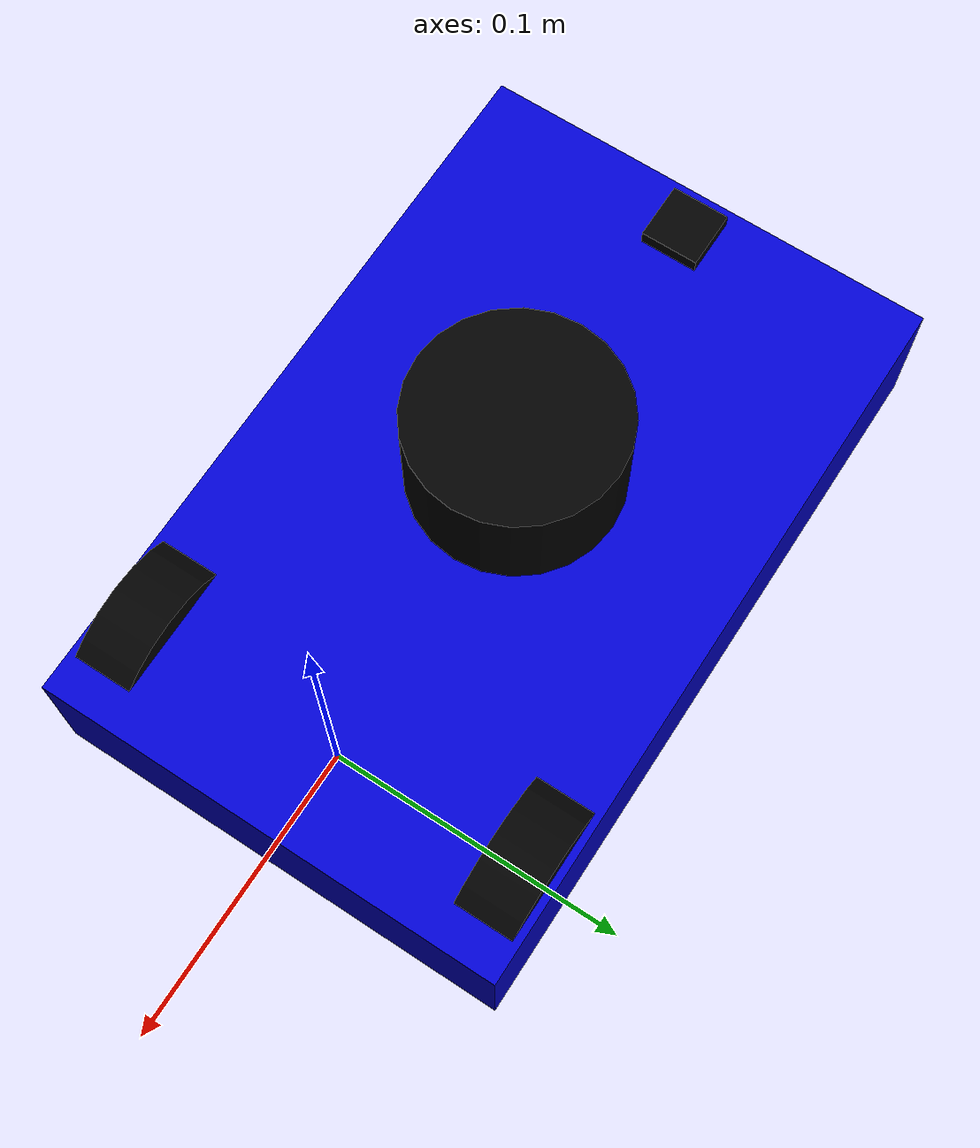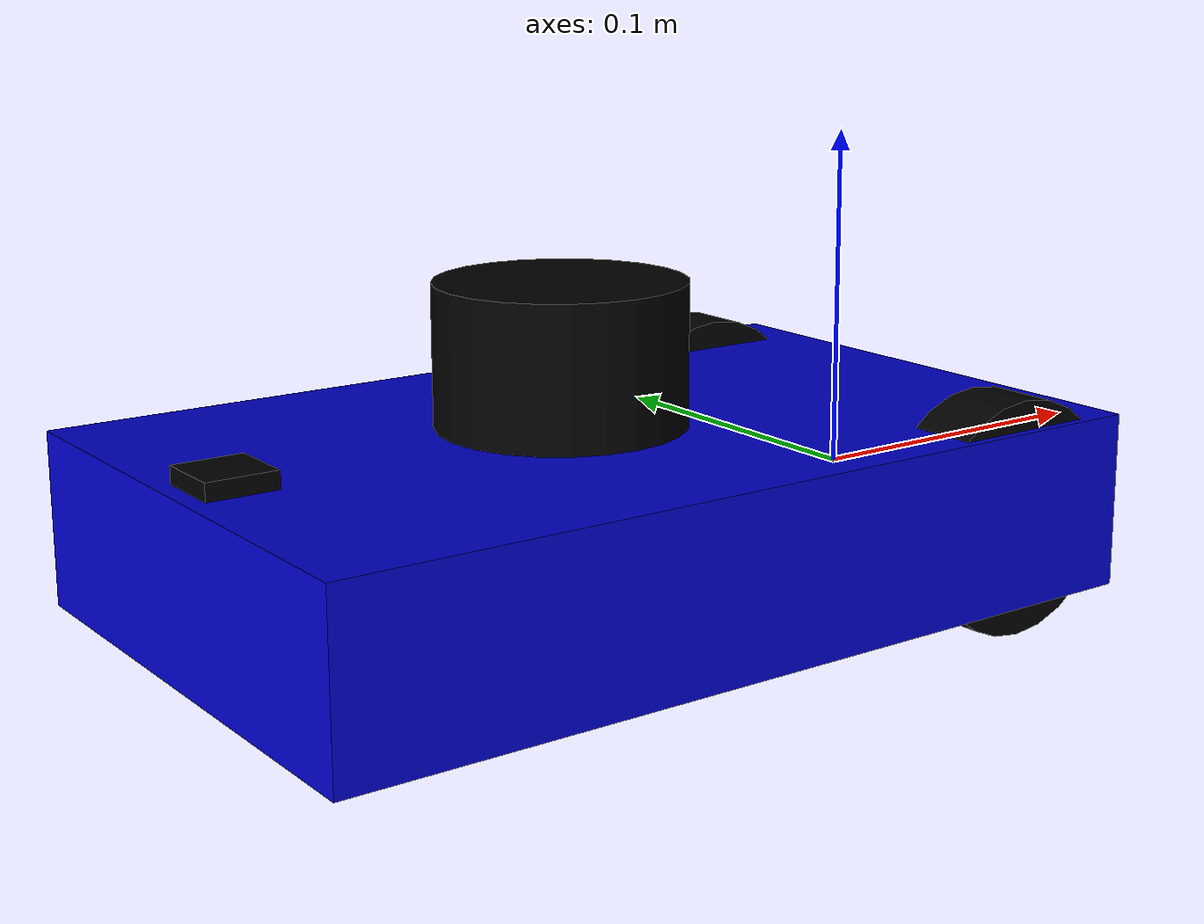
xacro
<?xml version="1.0"?>
<robot xmlns:xacro="http://www.ros.org/wiki/xacro" name="testbot">

  <!-- Properties extracted from actual hardware -->
  <xacro:property name="base_length" value="0.250"/>  <!-- meters -->
  <xacro:property name="base_width" value="0.160"/>
  <xacro:property name="base_height" value="0.05"/>
  <xacro:property name="base_offset_x" value="-0.090"/>  <!-- COM offset -->

  <xacro:property name="wheel_radius" value="0.0335"/>  <!-- 33.5mm -->
  <xacro:property name="wheel_width" value="0.02"/>     <!-- 20mm -->
  <xacro:property name="wheelbase" value="0.135"/>      <!-- 2 * 0.0675 = 135mm between wheels -->

  <xacro:property name="base_mass" value="0.875"/>  <!-- kg -->
  <xacro:property name="wheel_mass" value="0.1"/>
  <xacro:property name="caster_mass" value="0.05"/>

  <xacro:property name="caster_radius" value="0.015"/>
  <xacro:property name="caster_offset_x" value="-0.180"/>
  <xacro:property name="caster_offset_z" value="-0.035"/>

  <!-- Materials -->
  <material name="black">
    <color rgba="0.0 0.0 0.0 1.0"/>
  </material>
  <material name="blue">
    <color rgba="0.0 0.0 0.8 1.0"/>
  </material>

  <!-- World link (root) -->
  <link name="odom"/>

  <!-- Base Link -->
  <joint name="odom_joint" type="fixed">
    <parent link="odom"/>
    <child link="base_link"/>
    <origin xyz="0 0 0" rpy="0 0 0"/>
  </joint>

  <link name="base_link">
    <visual>
      <geometry>
        <box size="${base_length} ${base_width} ${base_height}"/>
      </geometry>
      <origin xyz="${base_offset_x} 0 0" rpy="0 0 0"/>
      <material name="blue"/>
    </visual>
    <collision>
      <geometry>
        <box size="${base_length} ${base_width} ${base_height}"/>
      </geometry>
      <origin xyz="${base_offset_x} 0 0" rpy="0 0 0"/>
    </collision>
    <inertial>
      <mass value="${base_mass}"/>
      <origin xyz="${base_offset_x} 0 0" rpy="0 0 0"/>
      <inertia
        ixx="0.001" ixy="0.0" ixz="0.0"
        iyy="0.001" iyz="0.0"
        izz="0.001"/>
    </inertial>
  </link>

  <!-- Left Wheel -->
  <link name="left_wheel">
    <visual>
      <geometry>
        <cylinder length="${wheel_width}" radius="${wheel_radius}"/>
      </geometry>
      <material name="black"/>
    </visual>
    <collision>
      <geometry>
        <cylinder length="${wheel_width}" radius="${wheel_radius}"/>
      </geometry>
    </collision>
    <inertial>
      <mass value="${wheel_mass}"/>
      <inertia
        ixx="0.00001" ixy="0.0" ixz="0.0"
        iyy="0.00001" iyz="0.0"
        izz="0.00001"/>
    </inertial>
  </link>

  <joint name="left_wheel_joint" type="continuous">
    <parent link="base_link"/>
    <child link="left_wheel"/>
    <origin xyz="0 ${wheelbase/2} 0" rpy="-1.5708 0 0"/>
    <axis xyz="0 0 1"/>
  </joint>

  <!-- Right Wheel -->
  <link name="right_wheel">
    <visual>
      <geometry>
        <cylinder length="${wheel_width}" radius="${wheel_radius}"/>
      </geometry>
      <material name="black"/>
    </visual>
    <collision>
      <geometry>
        <cylinder length="${wheel_width}" radius="${wheel_radius}"/>
      </geometry>
    </collision>
    <inertial>
      <mass value="${wheel_mass}"/>
      <inertia
        ixx="0.00001" ixy="0.0" ixz="0.0"
        iyy="0.00001" iyz="0.0"
        izz="0.00001"/>
    </inertial>
  </link>

  <joint name="right_wheel_joint" type="continuous">
    <parent link="base_link"/>
    <child link="right_wheel"/>
    <origin xyz="0 ${-wheelbase/2} 0" rpy="1.5708 0 0"/>
    <axis xyz="0 0 1"/>
  </joint>

  <!-- Caster Wheel -->
  <link name="caster_wheel">
    <visual>
      <geometry>
        <sphere radius="${caster_radius}"/>
      </geometry>
      <material name="black"/>
    </visual>
    <collision>
      <geometry>
        <sphere radius="${caster_radius}"/>
      </geometry>
    </collision>
    <inertial>
      <mass value="${caster_mass}"/>
      <inertia
        ixx="0.000001" ixy="0.0" ixz="0.0"
        iyy="0.000001" iyz="0.0"
        izz="0.000001"/>
    </inertial>
  </link>

  <joint name="caster_wheel_joint" type="fixed">
    <parent link="base_link"/>
    <child link="caster_wheel"/>
    <origin xyz="${caster_offset_x} 0 ${caster_offset_z}"/>
  </joint>

  <!-- IMU -->
  <link name="imu_link">
    <visual>
      <geometry>
        <box size="0.02 0.02 0.01"/>
      </geometry>
      <material name="black"/>
    </visual>
    <inertial>
      <mass value="0.01"/>
      <inertia
        ixx="0.00001" ixy="0.0" ixz="0.0"
        iyy="0.00001" iyz="0.0"
        izz="0.00001"/>
    </inertial>
  </link>

  <joint name="imu_joint" type="fixed">
    <parent link="base_link"/>
    <child link="imu_link"/>
    <origin xyz="-0.200 0 0.025"/>
  </joint>

  <!-- LIDAR -->
  <link name="lidar_link">
    <visual>
      <geometry>
        <cylinder length="0.04" radius="0.035"/>
      </geometry>
      <material name="black"/>
    </visual>
    <collision>
      <geometry>
        <cylinder length="0.04" radius="0.035"/>
      </geometry>
    </collision>
    <inertial>
      <mass value="0.1"/>
      <inertia
        ixx="0.00001" ixy="0.0" ixz="0.0"
        iyy="0.00001" iyz="0.0"
        izz="0.00001"/>
    </inertial>
  </link>

  <joint name="lidar_joint" type="fixed">
    <parent link="base_link"/>
    <child link="lidar_link"/>
    <origin xyz="-0.1 0 0.046"/>
  </joint>

  <!-- Gazebo plugins will be added here -->

</robot>
